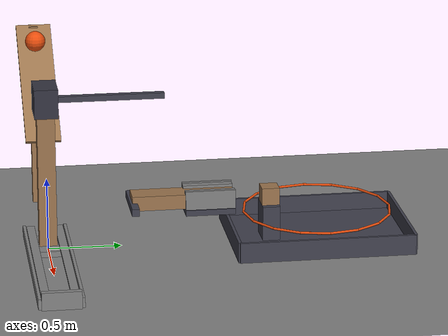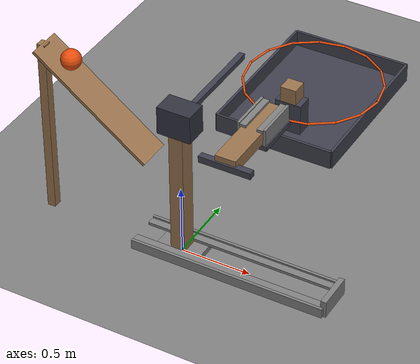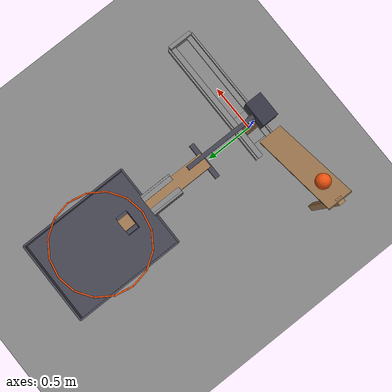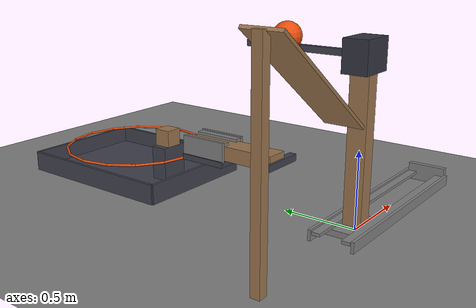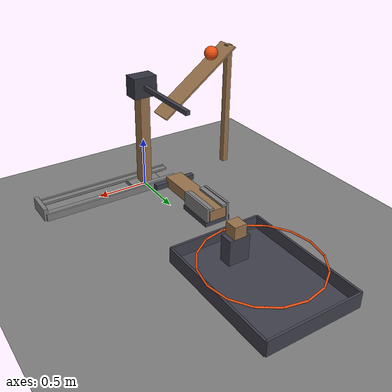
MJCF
<mujoco model="ramp_releases_hammer_across_a_gap">
  <compiler angle="radian"/>
  <option timestep="0.002"/>
  <worldbody>
    <geom name="floor" type="plane" size="6 6 0.1" friction="0.002 0.001 0.001"/>
    <body name="ramp">
      <geom name="ramp_deck" type="box" pos="-0.6 0 1" size="0.5 0.12 0.01" euler="0 0.643501 0" friction="0.7 0.001 0.0005" rgba="0.6 0.45 0.3 1"/>
      <geom name="ramp_leg" type="box" pos="-1 0 0.65" size="0.03 0.03 0.65" friction="0.7 0.001 0.0005" rgba="0.6 0.45 0.3 1"/>
    </body>
    <body name="ball" pos="-0.792 0 1.244">
      <freejoint/>
      <geom name="ball" type="sphere" pos="0 0 0" size="0.07" mass="0.5" condim="6" friction="0.7 0.001 0.0005" solref="0.01 1" rgba="0.9 0.3 0.05 1"/>
    </body>
    <body name="prop positive guide">
      <geom name="prop positive guide" type="box" pos="0.4 0.14 0.035" size="0.7 0.01 0.035" friction="0.002 0.005 0.0001"/>
    </body>
    <body name="prop negative guide">
      <geom name="prop negative guide" type="box" pos="0.4 -0.14 0.035" size="0.7 0.01 0.035" friction="0.002 0.005 0.0001"/>
    </body>
    <body name="prop positive roof">
      <geom name="prop positive roof" type="box" pos="0.4 0.0975 0.052" size="0.7 0.0275 0.01" friction="0.002 0.005 0.0001"/>
    </body>
    <body name="prop negative roof">
      <geom name="prop negative roof" type="box" pos="0.4 -0.0975 0.052" size="0.7 0.0275 0.01" friction="0.002 0.005 0.0001"/>
    </body>
    <body name="prop end stop">
      <geom name="prop end stop" type="box" pos="1.1 0 0.06" size="0.02 0.13 0.06" solref="0.01 1"/>
    </body>
    <body name="prop" pos="0 0 0.5">
      <freejoint/>
      <geom name="prop" type="box" pos="0 0 0" size="0.05 0.06 0.46" mass="0.1" friction="0.002 0.005 0.0001" solref="0.01 1" rgba="0.6 0.45 0.3 1"/>
      <geom name="prop foot" type="box" pos="0 0 -0.48" size="0.16 0.12 0.02" mass="0.08" friction="0.002 0.005 0.0001" solref="0.01 1"/>
    </body>
    <body name="hammer" pos="0 0.8 1.06">
      <joint name="hammer_hinge" type="hinge" pos="0 0 0" axis="1 0 0" limited="true" range="0 1.5708" damping="0.02"/>
      <geom name="hammer" type="box" pos="0 -0.4 0" size="0.02 0.4 0.02" mass="0.12" friction="0.002 0.005 0.0001" solref="0.01 1" rgba="0.25 0.25 0.3 1"/>
      <geom name="hammer head" type="box" pos="0 -0.8 0" size="0.12 0.08 0.1" mass="1.5" friction="0.002 0.005 0.0001" solref="0.01 1" rgba="0.2 0.2 0.25 1"/>
    </body>
    <body name="peg track">
      <geom name="peg track" type="box" pos="0 1.1 0.25" size="0.12 0.17 0.02" friction="0.01 0.005 0.0001" rgba="0.25 0.25 0.3 1"/>
    </body>
    <body name="peg positive guide">
      <geom name="peg positive guide" type="box" pos="0.1 1.1 0.315" size="0.01 0.17 0.085" friction="0.01 0.005 0.0001"/>
    </body>
    <body name="peg negative guide">
      <geom name="peg negative guide" type="box" pos="-0.1 1.1 0.315" size="0.01 0.17 0.085" friction="0.01 0.005 0.0001"/>
    </body>
    <body name="peg positive roof">
      <geom name="peg positive roof" type="box" pos="0.0675 1.1 0.382" size="0.025 0.17 0.01" friction="0.01 0.005 0.0001"/>
    </body>
    <body name="peg negative roof">
      <geom name="peg negative roof" type="box" pos="-0.0675 1.1 0.382" size="0.025 0.17 0.01" friction="0.01 0.005 0.0001"/>
    </body>
    <body name="peg" pos="0 0.92 0.32">
      <freejoint/>
      <geom name="peg" type="box" pos="0 0 0" size="0.08 0.35 0.05" mass="0.18" friction="0.01 0.005 0.0001" solref="0.01 1" rgba="0.6 0.45 0.3 1"/>
      <geom name="peg stop crossbar" type="box" pos="0 -0.34 -0.02" size="0.2 0.025 0.025" mass="0.03" friction="0.01 0.005 0.0001" solref="0.01 1" rgba="0.25 0.25 0.3 1"/>
    </body>
    <body name="payload pedestal">
      <geom name="payload pedestal" type="box" pos="0 1.52 0.13" size="0.1 0.06 0.13" friction="0.01 0.005 0.0001" rgba="0.25 0.25 0.3 1"/>
    </body>
    <body name="block" pos="0 1.52 0.32">
      <freejoint/>
      <geom name="block" type="box" pos="0 0 0" size="0.06 0.06 0.06" mass="0.18" friction="0.3 0.01 0.005" solref="0.01 1" rgba="0.6 0.45 0.3 1"/>
    </body>
    <body name="hoop">
      <geom name="hoop_00" type="capsule" size="0.008" fromto="0.508 1.85 0.2 0.469331 2.0444 0.2" friction="0.3 0.005 0.0001" solref="0.01 1" rgba="0.9 0.3 0.05 1"/>
      <geom name="hoop_01" type="capsule" size="0.008" fromto="0.469331 2.0444 0.2 0.35921 2.20921 0.2" friction="0.3 0.005 0.0001" solref="0.01 1" rgba="0.9 0.3 0.05 1"/>
      <geom name="hoop_02" type="capsule" size="0.008" fromto="0.35921 2.20921 0.2 0.194403 2.31933 0.2" friction="0.3 0.005 0.0001" solref="0.01 1" rgba="0.9 0.3 0.05 1"/>
      <geom name="hoop_03" type="capsule" size="0.008" fromto="0.194403 2.31933 0.2 3.1106e-17 2.358 0.2" friction="0.3 0.005 0.0001" solref="0.01 1" rgba="0.9 0.3 0.05 1"/>
      <geom name="hoop_04" type="capsule" size="0.008" fromto="3.1106e-17 2.358 0.2 -0.194403 2.31933 0.2" friction="0.3 0.005 0.0001" solref="0.01 1" rgba="0.9 0.3 0.05 1"/>
      <geom name="hoop_05" type="capsule" size="0.008" fromto="-0.194403 2.31933 0.2 -0.35921 2.20921 0.2" friction="0.3 0.005 0.0001" solref="0.01 1" rgba="0.9 0.3 0.05 1"/>
      <geom name="hoop_06" type="capsule" size="0.008" fromto="-0.35921 2.20921 0.2 -0.469331 2.0444 0.2" friction="0.3 0.005 0.0001" solref="0.01 1" rgba="0.9 0.3 0.05 1"/>
      <geom name="hoop_07" type="capsule" size="0.008" fromto="-0.469331 2.0444 0.2 -0.508 1.85 0.2" friction="0.3 0.005 0.0001" solref="0.01 1" rgba="0.9 0.3 0.05 1"/>
      <geom name="hoop_08" type="capsule" size="0.008" fromto="-0.508 1.85 0.2 -0.469331 1.6556 0.2" friction="0.3 0.005 0.0001" solref="0.01 1" rgba="0.9 0.3 0.05 1"/>
      <geom name="hoop_09" type="capsule" size="0.008" fromto="-0.469331 1.6556 0.2 -0.35921 1.49079 0.2" friction="0.3 0.005 0.0001" solref="0.01 1" rgba="0.9 0.3 0.05 1"/>
      <geom name="hoop_10" type="capsule" size="0.008" fromto="-0.35921 1.49079 0.2 -0.194403 1.38067 0.2" friction="0.3 0.005 0.0001" solref="0.01 1" rgba="0.9 0.3 0.05 1"/>
      <geom name="hoop_11" type="capsule" size="0.008" fromto="-0.194403 1.38067 0.2 -9.33181e-17 1.342 0.2" friction="0.3 0.005 0.0001" solref="0.01 1" rgba="0.9 0.3 0.05 1"/>
      <geom name="hoop_12" type="capsule" size="0.008" fromto="-9.33181e-17 1.342 0.2 0.194403 1.38067 0.2" friction="0.3 0.005 0.0001" solref="0.01 1" rgba="0.9 0.3 0.05 1"/>
      <geom name="hoop_13" type="capsule" size="0.008" fromto="0.194403 1.38067 0.2 0.35921 1.49079 0.2" friction="0.3 0.005 0.0001" solref="0.01 1" rgba="0.9 0.3 0.05 1"/>
      <geom name="hoop_14" type="capsule" size="0.008" fromto="0.35921 1.49079 0.2 0.469331 1.6556 0.2" friction="0.3 0.005 0.0001" solref="0.01 1" rgba="0.9 0.3 0.05 1"/>
      <geom name="hoop_15" type="capsule" size="0.008" fromto="0.469331 1.6556 0.2 0.508 1.85 0.2" friction="0.3 0.005 0.0001" solref="0.01 1" rgba="0.9 0.3 0.05 1"/>
    </body>
    <body name="cup">
      <geom name="cup_base" type="box" pos="0 1.85 0.01" size="0.45 0.6 0.01" friction="0.9 0.02 0.01" solref="0.01 1" rgba="0.25 0.25 0.3 1"/>
      <geom name="cup_near_wall" type="box" pos="-0.45 1.85 0.07" size="0.01 0.6 0.07" friction="0.9 0.02 0.01" solref="0.01 1" rgba="0.25 0.25 0.3 1"/>
      <geom name="cup_far_wall" type="box" pos="0.45 1.85 0.07" size="0.01 0.6 0.07" friction="0.9 0.02 0.01" solref="0.01 1" rgba="0.25 0.25 0.3 1"/>
      <geom name="cup_left_wall" type="box" pos="0 2.45 0.07" size="0.45 0.01 0.07" friction="0.9 0.02 0.01" solref="0.01 1" rgba="0.25 0.25 0.3 1"/>
      <geom name="cup_right_wall" type="box" pos="0 1.25 0.07" size="0.45 0.01 0.07" friction="0.9 0.02 0.01" solref="0.01 1" rgba="0.25 0.25 0.3 1"/>
    </body>
  </worldbody>
  <keyframe>
    <key name="start" qpos="-0.792 0 1.244 1 0 0 0 0 0 0.5 1 0 0 0 0 0 0.92 0.32 1 0 0 0 0 1.52 0.32 1 0 0 0" qvel="0 0 0 0 0 0 0 0 0 0 0 0 0 0 0 0 0 0 0 0 0 0 0 0 0"/>
  </keyframe>
</mujoco>
